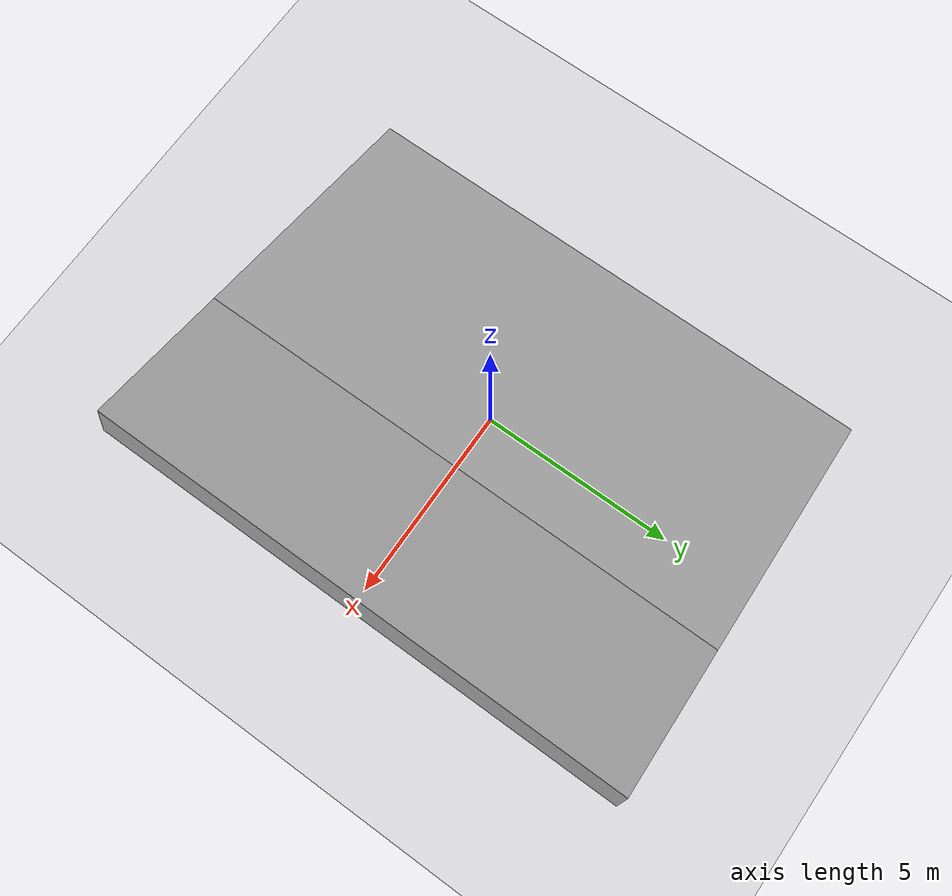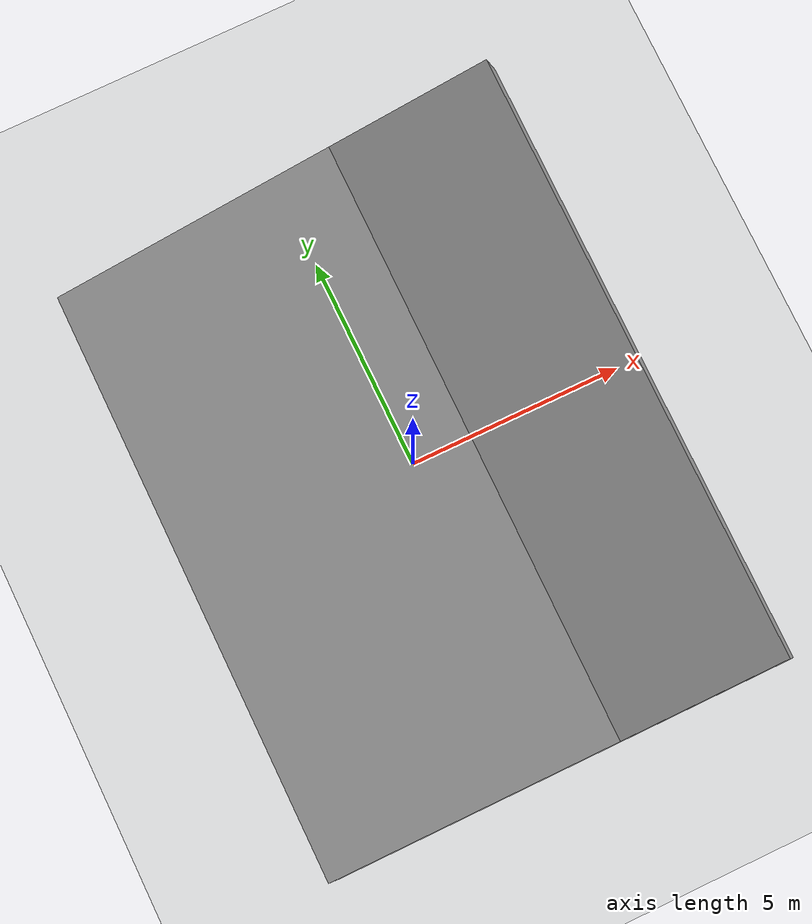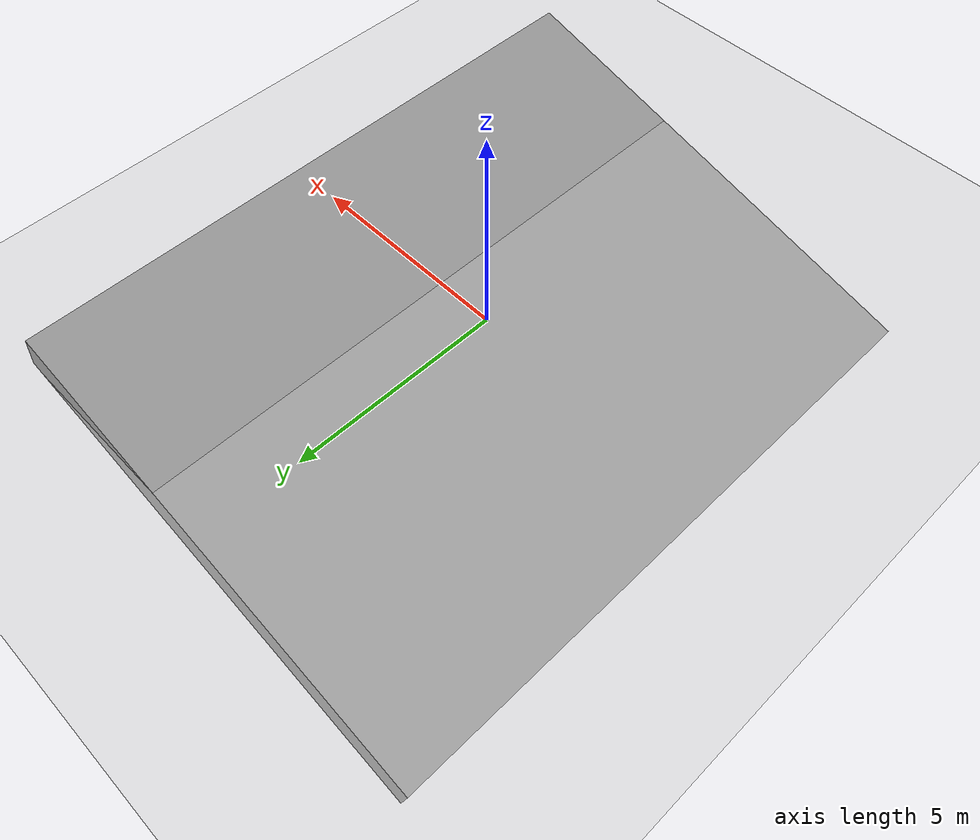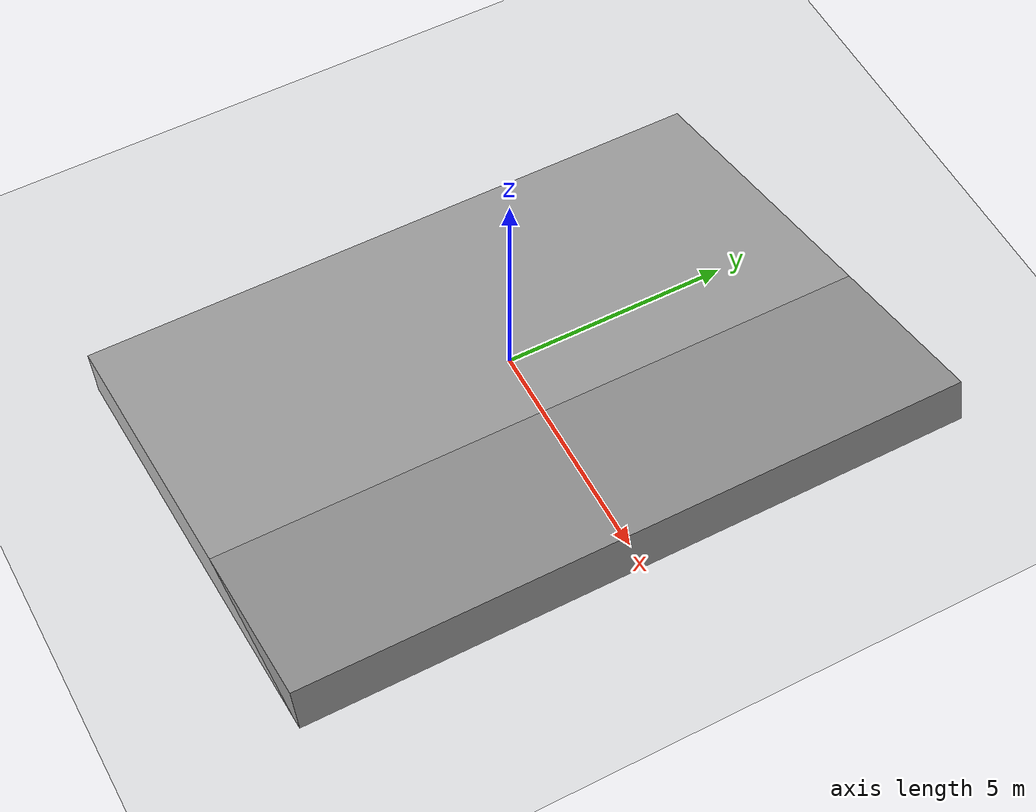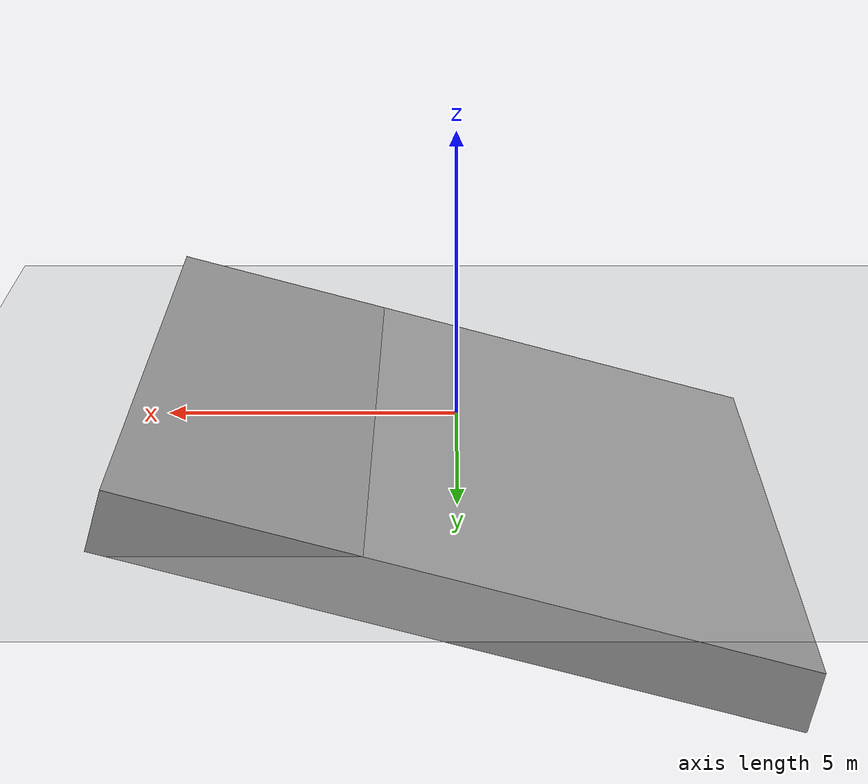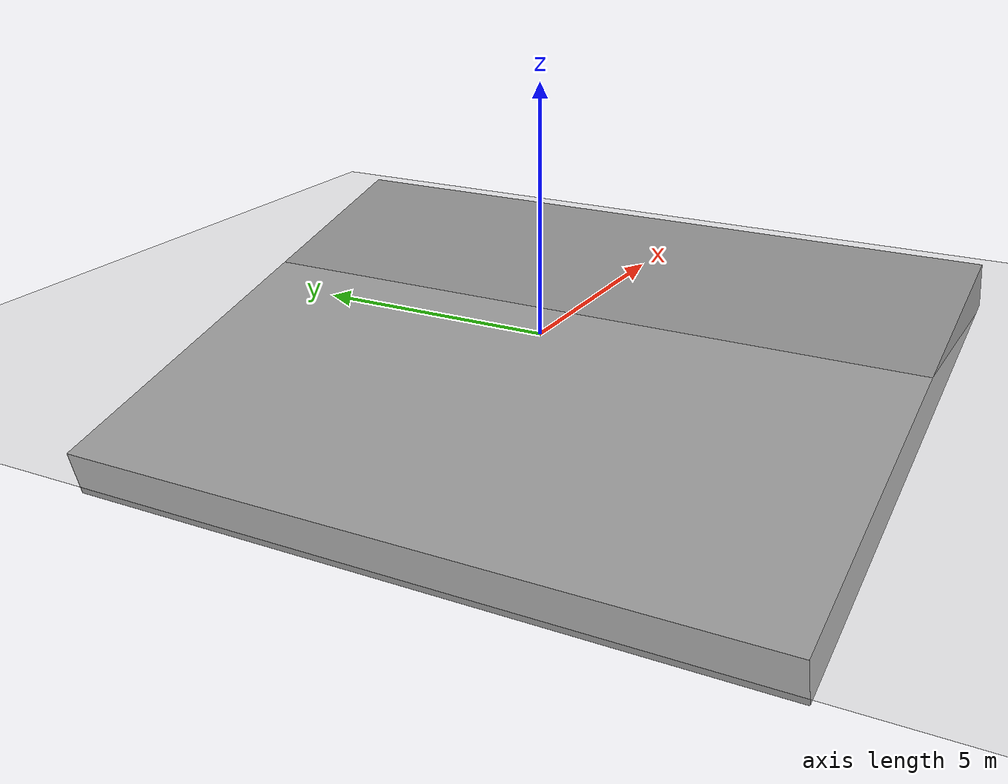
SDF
<sdf version="1.7">
 <world name="empty">
  <plugin name="hina_physics" filename="src/hina_ssi_physics/libhina_ssi_plugin_physics.so"/>
  <gravity>0 0 -9.8</gravity>
  <magnetic_field>6e-06 2.3e-05 -4.2e-05</magnetic_field>
  <atmosphere type="adiabatic"/>
  <physics type="ode">
   <max_step_size>0.001</max_step_size>
   <real_time_factor>1</real_time_factor>
   <real_time_update_rate>1000</real_time_update_rate>
  </physics>
  <scene><ambient>0.4 0.4 0.4 1</ambient><background>0.7 0.7 0.7 1</background><shadows>1</shadows></scene>
  <spherical_coordinates>
   <surface_model>EARTH_WGS84</surface_model>
   <latitude_deg>0</latitude_deg>
   <longitude_deg>0</longitude_deg>
   <elevation>0</elevation>
   <heading_deg>0</heading_deg>
  </spherical_coordinates>
  <model name="ground_plane">
   <static>1</static>
   <link name="link">
    <visual name="visual">
     <plugin name="hina" filename="src/hina_ssi_visual/libhina_ssi_plugin_visual.so"/>
     <cast_shadows>0</cast_shadows>
     <geometry><plane><normal>0 0 1</normal><size>0 0</size></plane></geometry>
     <material>
      <script><uri>file://media/materials/scripts/gazebo.material</uri><name>Gazebo/Grey</name></script>
     </material>
    </visual>
   </link>
   <pose>0.252724 -0.228037 0 0 -0 0</pose>
  </model>
  <light name="sun" type="directional">
   <pose>2.80879 2.02825 10 0 -0 0</pose>
   <diffuse>0.8 0.8 0.8 1</diffuse>
   <specular>0.2 0.2 0.2 1</specular>
   <attenuation>
    <range>1000</range>
    <constant>0.9</constant>
    <linear>0.01</linear>
    <quadratic>0.001</quadratic>
   </attenuation>
   <direction>-0.5 0.1 -0.9</direction>
   <spot><inner_angle>0</inner_angle><outer_angle>0</outer_angle><falloff>0</falloff></spot>
  </light>
  <model name="Floor">
   <link name="link_0">
    <inertial>
     <mass>166.913</mass>
     <inertia><ixx>3050.39</ixx><ixy>0</ixy><ixz>0</ixz><iyy>1789.01</iyy><iyz>0</iyz><izz>4811.58</izz></inertia>
    </inertial>
    <visual name="visual">
     <geometry><box><size>11.2968 14.7751 1</size></box></geometry>
     <material>
      <lighting>1</lighting>
      <script><uri>file://media/materials/scripts/gazebo.material</uri><name>Gazebo/Grey</name></script>
      <shader type="pixel"/>
     </material>
    </visual>
    <collision name="collision">
     <geometry><box><size>11.2968 14.7751 1</size></box></geometry>
     <surface>
      <friction>
       <ode><mu>1</mu><mu2>1</mu2><fdir1>0 0 0</fdir1><slip1>0</slip1><slip2>0</slip2></ode>
       <torsional>
        <coefficient>1</coefficient>
        <patch_radius>0</patch_radius>
        <surface_radius>0</surface_radius>
        <use_patch_radius>1</use_patch_radius>
        <ode><slip>0</slip></ode>
       </torsional>
      </friction>
      <bounce><restitution_coefficient>0</restitution_coefficient><threshold>1e+06</threshold></bounce>
      <contact>
       <collide_without_contact>0</collide_without_contact>
       <collide_without_contact_bitmask>1</collide_without_contact_bitmask>
       <collide_bitmask>1</collide_bitmask>
       <ode>
        <soft_cfm>0</soft_cfm>
        <soft_erp>0.2</soft_erp>
        <kp>1e+13</kp>
        <kd>1</kd>
        <max_vel>0.01</max_vel>
        <min_depth>0</min_depth>
       </ode>
       <bullet>
        <split_impulse>1</split_impulse>
        <split_impulse_penetration_threshold>-0.01</split_impulse_penetration_threshold>
        <soft_cfm>0</soft_cfm>
        <soft_erp>0.2</soft_erp>
        <kp>1e+13</kp>
        <kd>1</kd>
       </bullet>
      </contact>
     </surface>
    </collision>
   </link>
   <static>1</static>
   <pose>0 0 -0.916015 0 -0.261799 0</pose>
  </model>
 </world>
</sdf>
